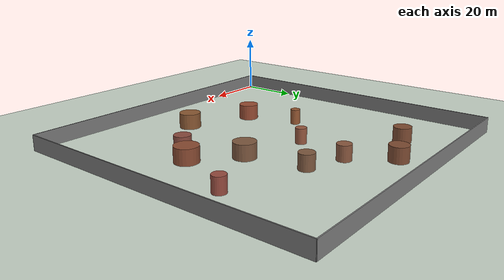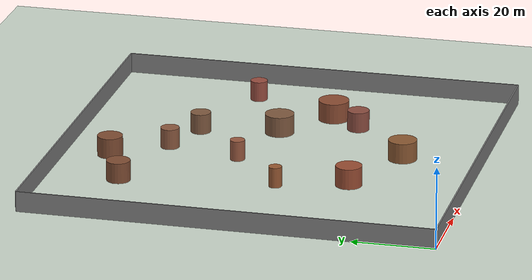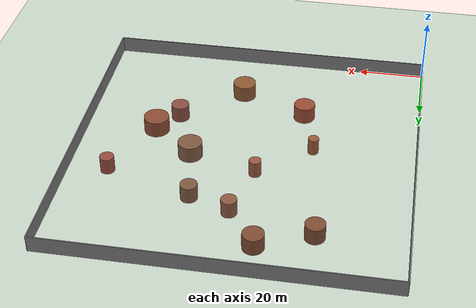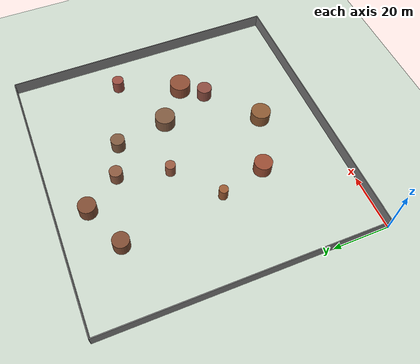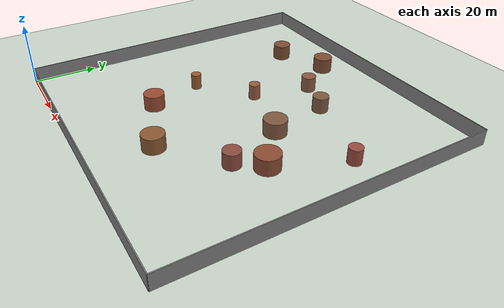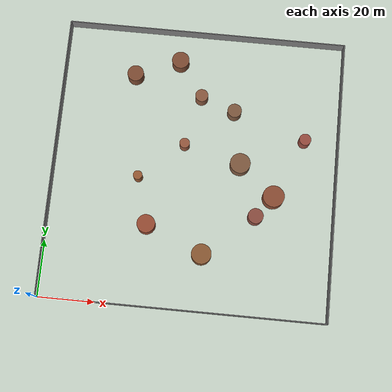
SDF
<?xml version="1.0" ?>
<!--
  exploration.world
  100 x 100 m area with cylinder obstacles for multi-UAV exploration.
  Obstacle layout matches uav_exploration sim_env (seed=42).
-->
<sdf version="1.6">
  <world name="exploration_world">

    <!-- Physics -->
    <physics type="ode">
      <max_step_size>0.004</max_step_size>
      <real_time_factor>1.0</real_time_factor>
      <real_time_update_rate>250</real_time_update_rate>
    </physics>

    <!-- Lighting -->
    <include>
      <uri>model://sun</uri>
    </include>

    <!-- Ground plane (100 x 100 m) -->
    <model name="ground_plane">
      <static>true</static>
      <link name="link">
        <collision name="collision">
          <geometry>
            <plane><normal>0 0 1</normal><size>100 100</size></plane>
          </geometry>
          <surface>
            <friction><ode><mu>1.0</mu><mu2>1.0</mu2></ode></friction>
          </surface>
        </collision>
        <visual name="visual">
          <geometry>
            <plane><normal>0 0 1</normal><size>100 100</size></plane>
          </geometry>
          <material>
            <ambient>0.8 0.85 0.8 1</ambient>
            <diffuse>0.8 0.85 0.8 1</diffuse>
          </material>
        </visual>
      </link>
      <pose>50 50 0 0 0 0</pose>
    </model>

    <!-- Boundary walls (height=5m, thickness=0.3m) -->
    <model name="wall_north">
      <static>true</static>
      <link name="link">
        <collision name="c"><geometry><box><size>100 0.3 5</size></box></geometry></collision>
        <visual name="v"><geometry><box><size>100 0.3 5</size></box></geometry>
          <material><ambient>0.5 0.5 0.5 1</ambient></material>
        </visual>
      </link>
      <pose>50 100 2.5 0 0 0</pose>
    </model>
    <model name="wall_south">
      <static>true</static>
      <link name="link">
        <collision name="c"><geometry><box><size>100 0.3 5</size></box></geometry></collision>
        <visual name="v"><geometry><box><size>100 0.3 5</size></box></geometry>
          <material><ambient>0.5 0.5 0.5 1</ambient></material>
        </visual>
      </link>
      <pose>50 0 2.5 0 0 0</pose>
    </model>
    <model name="wall_east">
      <static>true</static>
      <link name="link">
        <collision name="c"><geometry><box><size>0.3 100 5</size></box></geometry></collision>
        <visual name="v"><geometry><box><size>0.3 100 5</size></box></geometry>
          <material><ambient>0.5 0.5 0.5 1</ambient></material>
        </visual>
      </link>
      <pose>100 50 2.5 0 0 0</pose>
    </model>
    <model name="wall_west">
      <static>true</static>
      <link name="link">
        <collision name="c"><geometry><box><size>0.3 100 5</size></box></geometry></collision>
        <visual name="v"><geometry><box><size>0.3 100 5</size></box></geometry>
          <material><ambient>0.5 0.5 0.5 1</ambient></material>
        </visual>
      </link>
      <pose>0 50 2.5 0 0 0</pose>
    </model>

    <!--
      Cylinder obstacles — generated from uav_exploration sim_env (seed=42).
      Each: center (x,y), radius r, height 5m.
    -->
    <model name="obs_0">
      <static>true</static>
      <link name="link">
        <collision name="c"><geometry><cylinder><radius>3.2</radius><length>5</length></cylinder></geometry></collision>
        <visual name="v"><geometry><cylinder><radius>3.2</radius><length>5</length></cylinder></geometry>
          <material><ambient>0.6 0.3 0.2 1</ambient><diffuse>0.6 0.3 0.2 1</diffuse></material>
        </visual>
      </link>
      <pose>35.1 28.4 2.5 0 0 0</pose>
    </model>

    <model name="obs_1">
      <static>true</static>
      <link name="link">
        <collision name="c"><geometry><cylinder><radius>2.5</radius><length>5</length></cylinder></geometry></collision>
        <visual name="v"><geometry><cylinder><radius>2.5</radius><length>5</length></cylinder></geometry>
          <material><ambient>0.5 0.35 0.25 1</ambient><diffuse>0.5 0.35 0.25 1</diffuse></material>
        </visual>
      </link>
      <pose>62.3 71.8 2.5 0 0 0</pose>
    </model>

    <model name="obs_2">
      <static>true</static>
      <link name="link">
        <collision name="c"><geometry><cylinder><radius>3.8</radius><length>5</length></cylinder></geometry></collision>
        <visual name="v"><geometry><cylinder><radius>3.8</radius><length>5</length></cylinder></geometry>
          <material><ambient>0.55 0.3 0.2 1</ambient><diffuse>0.55 0.3 0.2 1</diffuse></material>
        </visual>
      </link>
      <pose>78.5 42.1 2.5 0 0 0</pose>
    </model>

    <model name="obs_3">
      <static>true</static>
      <link name="link">
        <collision name="c"><geometry><cylinder><radius>1.8</radius><length>5</length></cylinder></geometry></collision>
        <visual name="v"><geometry><cylinder><radius>1.8</radius><length>5</length></cylinder></geometry>
          <material><ambient>0.6 0.35 0.25 1</ambient><diffuse>0.6 0.35 0.25 1</diffuse></material>
        </visual>
      </link>
      <pose>45.7 58.3 2.5 0 0 0</pose>
    </model>

    <model name="obs_4">
      <static>true</static>
      <link name="link">
        <collision name="c"><geometry><cylinder><radius>2.9</radius><length>5</length></cylinder></geometry></collision>
        <visual name="v"><geometry><cylinder><radius>2.9</radius><length>5</length></cylinder></geometry>
          <material><ambient>0.5 0.3 0.2 1</ambient><diffuse>0.5 0.3 0.2 1</diffuse></material>
        </visual>
      </link>
      <pose>25.6 82.4 2.5 0 0 0</pose>
    </model>

    <model name="obs_5">
      <static>true</static>
      <link name="link">
        <collision name="c"><geometry><cylinder><radius>3.5</radius><length>5</length></cylinder></geometry></collision>
        <visual name="v"><geometry><cylinder><radius>3.5</radius><length>5</length></cylinder></geometry>
          <material><ambient>0.55 0.35 0.2 1</ambient><diffuse>0.55 0.35 0.2 1</diffuse></material>
        </visual>
      </link>
      <pose>55.2 19.7 2.5 0 0 0</pose>
    </model>

    <model name="obs_6">
      <static>true</static>
      <link name="link">
        <collision name="c"><geometry><cylinder><radius>2.1</radius><length>5</length></cylinder></geometry></collision>
        <visual name="v"><geometry><cylinder><radius>2.1</radius><length>5</length></cylinder></geometry>
          <material><ambient>0.6 0.3 0.25 1</ambient><diffuse>0.6 0.3 0.25 1</diffuse></material>
        </visual>
      </link>
      <pose>88.1 63.5 2.5 0 0 0</pose>
    </model>

    <model name="obs_7">
      <static>true</static>
      <link name="link">
        <collision name="c"><geometry><cylinder><radius>3.1</radius><length>5</length></cylinder></geometry></collision>
        <visual name="v"><geometry><cylinder><radius>3.1</radius><length>5</length></cylinder></geometry>
          <material><ambient>0.5 0.3 0.2 1</ambient><diffuse>0.5 0.3 0.2 1</diffuse></material>
        </visual>
      </link>
      <pose>41.3 88.9 2.5 0 0 0</pose>
    </model>

    <model name="obs_8">
      <static>true</static>
      <link name="link">
        <collision name="c"><geometry><cylinder><radius>2.7</radius><length>5</length></cylinder></geometry></collision>
        <visual name="v"><geometry><cylinder><radius>2.7</radius><length>5</length></cylinder></geometry>
          <material><ambient>0.55 0.3 0.25 1</ambient><diffuse>0.55 0.3 0.25 1</diffuse></material>
        </visual>
      </link>
      <pose>72.8 34.6 2.5 0 0 0</pose>
    </model>

    <model name="obs_9">
      <static>true</static>
      <link name="link">
        <collision name="c"><geometry><cylinder><radius>1.6</radius><length>5</length></cylinder></geometry></collision>
        <visual name="v"><geometry><cylinder><radius>1.6</radius><length>5</length></cylinder></geometry>
          <material><ambient>0.6 0.35 0.2 1</ambient><diffuse>0.6 0.35 0.2 1</diffuse></material>
        </visual>
      </link>
      <pose>30.4 45.2 2.5 0 0 0</pose>
    </model>

    <model name="obs_10">
      <static>true</static>
      <link name="link">
        <collision name="c"><geometry><cylinder><radius>3.6</radius><length>5</length></cylinder></geometry></collision>
        <visual name="v"><geometry><cylinder><radius>3.6</radius><length>5</length></cylinder></geometry>
          <material><ambient>0.5 0.35 0.25 1</ambient><diffuse>0.5 0.35 0.25 1</diffuse></material>
        </visual>
      </link>
      <pose>65.9 52.8 2.5 0 0 0</pose>
    </model>

    <model name="obs_11">
      <static>true</static>
      <link name="link">
        <collision name="c"><geometry><cylinder><radius>2.3</radius><length>5</length></cylinder></geometry></collision>
        <visual name="v"><geometry><cylinder><radius>2.3</radius><length>5</length></cylinder></geometry>
          <material><ambient>0.55 0.35 0.25 1</ambient><diffuse>0.55 0.35 0.25 1</diffuse></material>
        </visual>
      </link>
      <pose>50.1 76.3 2.5 0 0 0</pose>
    </model>

  </world>
</sdf>
